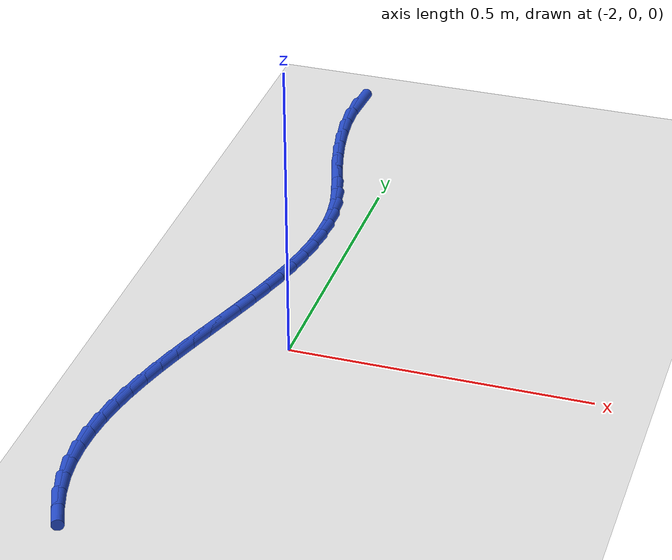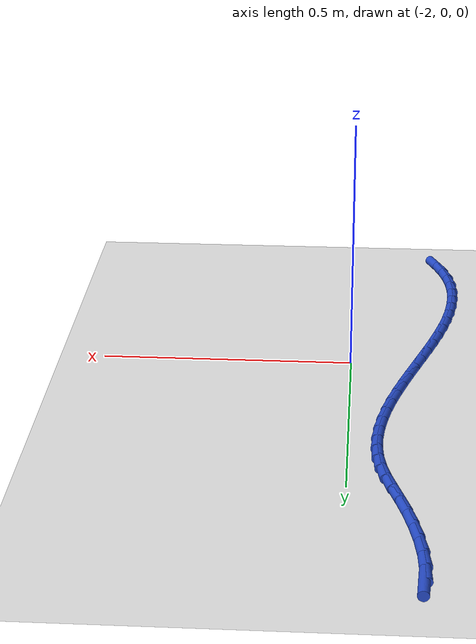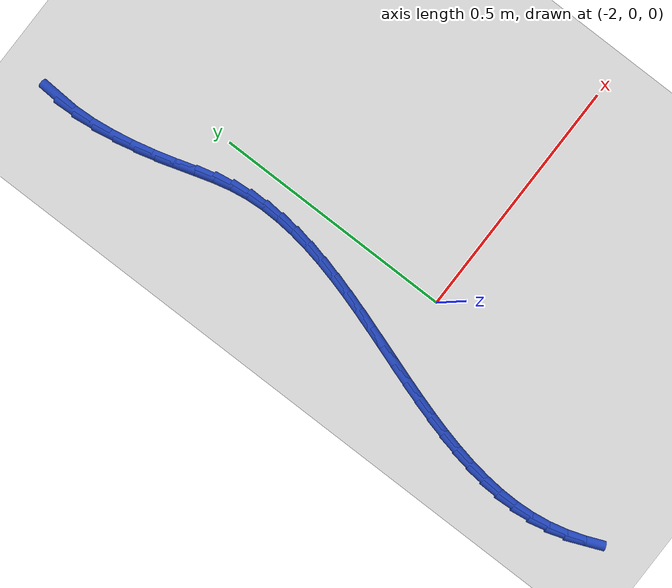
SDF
<sdf version="1.6">
 <world name="default">
  <model name="ground_plane">
   <static>1</static>
   <link name="link">
    <collision name="collision">
     <geometry><plane><normal>0 0 1</normal><size>100 100</size></plane></geometry>
     <surface><friction><ode><mu>100</mu><mu2>50</mu2></ode></friction></surface>
    </collision>
    <visual name="visual">
     <cast_shadows>0</cast_shadows>
     <geometry><plane><normal>0 0 1</normal><size>100 100</size></plane></geometry>
     <material>
      <script><uri>file://media/materials/scripts/gazebo.material</uri><name>Gazebo/WhiteGlow</name></script>
     </material>
    </visual>
   </link>
  </model>
  <model name="line">
   <link name="link_91">
    <pose>-2.130423496986155 0.807959017133868 0.01 0 1.57 1.5155421655493575</pose>
    <collision name="collision">
     <geometry><cylinder><radius>0.01</radius><length>0.08</length></cylinder></geometry>
    </collision>
    <visual name="visual">
     <material>
      <script><name>Gazebo/Blue</name><uri>file://media/materials/scripts/gazebo.material</uri></script>
     </material>
     <geometry><cylinder><radius>0.01</radius><length>0.08</length></cylinder></geometry>
    </visual>
   </link>
   <link name="link_92">
    <pose>-2.1326080266100917 0.7684632401121725 0.01 0 1.57 -1.5203920685964691</pose>
    <collision name="collision">
     <geometry><cylinder><radius>0.01</radius><length>0.08</length></cylinder></geometry>
    </collision>
    <visual name="visual">
     <material>
      <script><name>Gazebo/Blue</name><uri>file://media/materials/scripts/gazebo.material</uri></script>
     </material>
     <geometry><cylinder><radius>0.01</radius><length>0.08</length></cylinder></geometry>
    </visual>
   </link>
   <link name="link_93">
    <pose>-2.1304706945708576 0.7260953572918968 0.01 0 1.57 -1.442428677396946</pose>
    <collision name="collision">
     <geometry><cylinder><radius>0.01</radius><length>0.08</length></cylinder></geometry>
    </collision>
    <visual name="visual">
     <material>
      <script><name>Gazebo/Blue</name><uri>file://media/materials/scripts/gazebo.material</uri></script>
     </material>
     <geometry><cylinder><radius>0.01</radius><length>0.08</length></cylinder></geometry>
    </visual>
   </link>
   <link name="link_94">
    <pose>-2.124796878160886 0.682138665049626 0.01 0 1.57 -1.382705040670204</pose>
    <collision name="collision">
     <geometry><cylinder><radius>0.01</radius><length>0.08</length></cylinder></geometry>
    </collision>
    <visual name="visual">
     <material>
      <script><name>Gazebo/Blue</name><uri>file://media/materials/scripts/gazebo.material</uri></script>
     </material>
     <geometry><cylinder><radius>0.01</radius><length>0.08</length></cylinder></geometry>
    </visual>
   </link>
   <link name="link_95">
    <pose>-2.11637195467261 0.6378764597619441 0.01 0 1.57 -1.3351990940043768</pose>
    <collision name="collision">
     <geometry><cylinder><radius>0.01</radius><length>0.08</length></cylinder></geometry>
    </collision>
    <visual name="visual">
     <material>
      <script><name>Gazebo/Blue</name><uri>file://media/materials/scripts/gazebo.material</uri></script>
     </material>
     <geometry><cylinder><radius>0.01</radius><length>0.08</length></cylinder></geometry>
    </visual>
   </link>
   <link name="link_96">
    <pose>-2.1059813013984616 0.5945920378054371 0.01 0 1.57 -1.2959185022911541</pose>
    <collision name="collision">
     <geometry><cylinder><radius>0.01</radius><length>0.08</length></cylinder></geometry>
    </collision>
    <visual name="visual">
     <material>
      <script><name>Gazebo/Blue</name><uri>file://media/materials/scripts/gazebo.material</uri></script>
     </material>
     <geometry><cylinder><radius>0.01</radius><length>0.08</length></cylinder></geometry>
    </visual>
   </link>
   <link name="link_97">
    <pose>-2.094410961816769 0.5535648971107137 0.01 0 1.57 -1.2701235366216421</pose>
    <collision name="collision">
     <geometry><cylinder><radius>0.01</radius><length>0.08</length></cylinder></geometry>
    </collision>
    <visual name="visual">
     <material>
      <script><name>Gazebo/Blue</name><uri>file://media/materials/scripts/gazebo.material</uri></script>
     </material>
     <geometry><cylinder><radius>0.01</radius><length>0.08</length></cylinder></geometry>
    </visual>
   </link>
   <link name="link_98">
    <pose>-2.082569528392191 0.5153757881461047 0.01 0 1.57 -1.2779452075612623</pose>
    <collision name="collision">
     <geometry><cylinder><radius>0.01</radius><length>0.08</length></cylinder></geometry>
    </collision>
    <visual name="visual">
     <material>
      <script><name>Gazebo/Blue</name><uri>file://media/materials/scripts/gazebo.material</uri></script>
     </material>
     <geometry><cylinder><radius>0.01</radius><length>0.08</length></cylinder></geometry>
    </visual>
   </link>
   <link name="link_99">
    <pose>-2.0716303660449467 0.4790957868657326 0.01 0 1.57 -1.3270153987502893</pose>
    <collision name="collision">
     <geometry><cylinder><radius>0.01</radius><length>0.08</length></cylinder></geometry>
    </collision>
    <visual name="visual">
     <material>
      <script><name>Gazebo/Blue</name><uri>file://media/materials/scripts/gazebo.material</uri></script>
     </material>
     <geometry><cylinder><radius>0.01</radius><length>0.08</length></cylinder></geometry>
    </visual>
   </link>
   <link name="link_100">
    <pose>-2.062801361708371 0.4435991322707718 0.01 0 1.57 -1.41325969163874</pose>
    <collision name="collision">
     <geometry><cylinder><radius>0.01</radius><length>0.08</length></cylinder></geometry>
    </collision>
    <visual name="visual">
     <material>
      <script><name>Gazebo/Blue</name><uri>file://media/materials/scripts/gazebo.material</uri></script>
     </material>
     <geometry><cylinder><radius>0.01</radius><length>0.08</length></cylinder></geometry>
    </visual>
   </link>
   <link name="link_101">
    <pose>-2.0571280799403913 0.4078850829469337 0.01 0 1.57 -1.5030542724279867</pose>
    <collision name="collision">
     <geometry><cylinder><radius>0.01</radius><length>0.08</length></cylinder></geometry>
    </collision>
    <visual name="visual">
     <material>
      <script><name>Gazebo/Blue</name><uri>file://media/materials/scripts/gazebo.material</uri></script>
     </material>
     <geometry><cylinder><radius>0.01</radius><length>0.08</length></cylinder></geometry>
    </visual>
   </link>
   <link name="link_102">
    <pose>-2.0546737168788285 0.37170951092546417 0.01 0 1.57 1.558225322866918</pose>
    <collision name="collision">
     <geometry><cylinder><radius>0.01</radius><length>0.08</length></cylinder></geometry>
    </collision>
    <visual name="visual">
     <material>
      <script><name>Gazebo/Blue</name><uri>file://media/materials/scripts/gazebo.material</uri></script>
     </material>
     <geometry><cylinder><radius>0.01</radius><length>0.08</length></cylinder></geometry>
    </visual>
   </link>
   <link name="link_103">
    <pose>-2.0551338154552417 0.33511145222522937 0.01 0 1.57 1.4879851521279988</pose>
    <collision name="collision">
     <geometry><cylinder><radius>0.01</radius><length>0.08</length></cylinder></geometry>
    </collision>
    <visual name="visual">
     <material>
      <script><name>Gazebo/Blue</name><uri>file://media/materials/scripts/gazebo.material</uri></script>
     </material>
     <geometry><cylinder><radius>0.01</radius><length>0.08</length></cylinder></geometry>
    </visual>
   </link>
   <link name="link_104">
    <pose>-2.0582032764079456 0.2981304374779441 0.01 0 1.57 1.4278055768079714</pose>
    <collision name="collision">
     <geometry><cylinder><radius>0.01</radius><length>0.08</length></cylinder></geometry>
    </collision>
    <visual name="visual">
     <material>
      <script><name>Gazebo/Blue</name><uri>file://media/materials/scripts/gazebo.material</uri></script>
     </material>
     <geometry><cylinder><radius>0.01</radius><length>0.08</length></cylinder></geometry>
    </visual>
   </link>
   <link name="link_105">
    <pose>-2.0635770004752585 0.2608059973153239 0.01 0 1.57 1.3773078490961805</pose>
    <collision name="collision">
     <geometry><cylinder><radius>0.01</radius><length>0.08</length></cylinder></geometry>
    </collision>
    <visual name="visual">
     <material>
      <script><name>Gazebo/Blue</name><uri>file://media/materials/scripts/gazebo.material</uri></script>
     </material>
     <geometry><cylinder><radius>0.01</radius><length>0.08</length></cylinder></geometry>
    </visual>
   </link>
   <link name="link_106">
    <pose>-2.0709498883954947 0.2231776623690827 0.01 0 1.57 1.3359325566383273</pose>
    <collision name="collision">
     <geometry><cylinder><radius>0.01</radius><length>0.08</length></cylinder></geometry>
    </collision>
    <visual name="visual">
     <material>
      <script><name>Gazebo/Blue</name><uri>file://media/materials/scripts/gazebo.material</uri></script>
     </material>
     <geometry><cylinder><radius>0.01</radius><length>0.08</length></cylinder></geometry>
    </visual>
   </link>
   <link name="link_107">
    <pose>-2.0800168409069713 0.18528496327093769 0.01 0 1.57 1.3030742181335824</pose>
    <collision name="collision">
     <geometry><cylinder><radius>0.01</radius><length>0.08</length></cylinder></geometry>
    </collision>
    <visual name="visual">
     <material>
      <script><name>Gazebo/Blue</name><uri>file://media/materials/scripts/gazebo.material</uri></script>
     </material>
     <geometry><cylinder><radius>0.01</radius><length>0.08</length></cylinder></geometry>
    </visual>
   </link>
   <link name="link_108">
    <pose>-2.0904727587480028 0.14716743065260285 0.01 0 1.57 1.27816789330948</pose>
    <collision name="collision">
     <geometry><cylinder><radius>0.01</radius><length>0.08</length></cylinder></geometry>
    </collision>
    <visual name="visual">
     <material>
      <script><name>Gazebo/Blue</name><uri>file://media/materials/scripts/gazebo.material</uri></script>
     </material>
     <geometry><cylinder><radius>0.01</radius><length>0.08</length></cylinder></geometry>
    </visual>
   </link>
   <link name="link_109">
    <pose>-2.102012542656906 0.10886459514579352 0.01 0 1.57 1.2607396186837174</pose>
    <collision name="collision">
     <geometry><cylinder><radius>0.01</radius><length>0.08</length></cylinder></geometry>
    </collision>
    <visual name="visual">
     <material>
      <script><name>Gazebo/Blue</name><uri>file://media/materials/scripts/gazebo.material</uri></script>
     </material>
     <geometry><cylinder><radius>0.01</radius><length>0.08</length></cylinder></geometry>
    </visual>
   </link>
   <link name="link_110">
    <pose>-2.1143310933719963 0.07041598738222468 0.01 0 1.57 1.250432966708732</pose>
    <collision name="collision">
     <geometry><cylinder><radius>0.01</radius><length>0.08</length></cylinder></geometry>
    </collision>
    <visual name="visual">
     <material>
      <script><name>Gazebo/Blue</name><uri>file://media/materials/scripts/gazebo.material</uri></script>
     </material>
     <geometry><cylinder><radius>0.01</radius><length>0.08</length></cylinder></geometry>
    </visual>
   </link>
   <link name="link_111">
    <pose>-2.1271233116315913 0.031861137993611593 0.01 0 1.57 1.2470213365960907</pose>
    <collision name="collision">
     <geometry><cylinder><radius>0.01</radius><length>0.08</length></cylinder></geometry>
    </collision>
    <visual name="visual">
     <material>
      <script><name>Gazebo/Blue</name><uri>file://media/materials/scripts/gazebo.material</uri></script>
     </material>
     <geometry><cylinder><radius>0.01</radius><length>0.08</length></cylinder></geometry>
    </visual>
   </link>
   <link name="link_112">
    <pose>-2.1400840981740057 -0.00676042238833157 0.01 0 1.57 1.2504123429536884</pose>
    <collision name="collision">
     <geometry><cylinder><radius>0.01</radius><length>0.08</length></cylinder></geometry>
    </collision>
    <visual name="visual">
     <material>
      <script><name>Gazebo/Blue</name><uri>file://media/materials/scripts/gazebo.material</uri></script>
     </material>
     <geometry><cylinder><radius>0.01</radius><length>0.08</length></cylinder></geometry>
    </visual>
   </link>
   <link name="link_113">
    <pose>-2.1529083537375553 -0.04540916313188786 0.01 0 1.57 1.260647821424092</pose>
    <collision name="collision">
     <geometry><cylinder><radius>0.01</radius><length>0.08</length></cylinder></geometry>
    </collision>
    <visual name="visual">
     <material>
      <script><name>Gazebo/Blue</name><uri>file://media/materials/scripts/gazebo.material</uri></script>
     </material>
     <geometry><cylinder><radius>0.01</radius><length>0.08</length></cylinder></geometry>
    </visual>
   </link>
   <link name="link_114">
    <pose>-2.1652909790605555 -0.08404555360534303 0.01 0 1.57 1.2779006135525537</pose>
    <collision name="collision">
     <geometry><cylinder><radius>0.01</radius><length>0.08</length></cylinder></geometry>
    </collision>
    <visual name="visual">
     <material>
      <script><name>Gazebo/Blue</name><uri>file://media/materials/scripts/gazebo.material</uri></script>
     </material>
     <geometry><cylinder><radius>0.01</radius><length>0.08</length></cylinder></geometry>
    </visual>
   </link>
   <link name="link_115">
    <pose>-2.1769268748813237 -0.12263006317698201 0.01 0 1.57 1.3024671875279168</pose>
    <collision name="collision">
     <geometry><cylinder><radius>0.01</radius><length>0.08</length></cylinder></geometry>
    </collision>
    <visual name="visual">
     <material>
      <script><name>Gazebo/Blue</name><uri>file://media/materials/scripts/gazebo.material</uri></script>
     </material>
     <geometry><cylinder><radius>0.01</radius><length>0.08</length></cylinder></geometry>
    </visual>
   </link>
   <link name="link_116">
    <pose>-2.187510941938175 -0.16112316121508954 0.01 0 1.57 1.3347529902338806</pose>
    <collision name="collision">
     <geometry><cylinder><radius>0.01</radius><length>0.08</length></cylinder></geometry>
    </collision>
    <visual name="visual">
     <material>
      <script><name>Gazebo/Blue</name><uri>file://media/materials/scripts/gazebo.material</uri></script>
     </material>
     <geometry><cylinder><radius>0.01</radius><length>0.08</length></cylinder></geometry>
    </visual>
   </link>
   <link name="link_117">
    <pose>-2.1967380809694257 -0.19948531708795061 0.01 0 1.57 1.375245001461138</pose>
    <collision name="collision">
     <geometry><cylinder><radius>0.01</radius><length>0.08</length></cylinder></geometry>
    </collision>
    <visual name="visual">
     <material>
      <script><name>Gazebo/Blue</name><uri>file://media/materials/scripts/gazebo.material</uri></script>
     </material>
     <geometry><cylinder><radius>0.01</radius><length>0.08</length></cylinder></geometry>
    </visual>
   </link>
   <link name="link_118">
    <pose>-2.2043031927133914 -0.23767700016385002 0.01 0 1.57 1.4244633862346643</pose>
    <collision name="collision">
     <geometry><cylinder><radius>0.01</radius><length>0.08</length></cylinder></geometry>
    </collision>
    <visual name="visual">
     <material>
      <script><name>Gazebo/Blue</name><uri>file://media/materials/scripts/gazebo.material</uri></script>
     </material>
     <geometry><cylinder><radius>0.01</radius><length>0.08</length></cylinder></geometry>
    </visual>
   </link>
   <link name="link_119">
    <pose>-2.2099011779083884 -0.2756586798110735 0.01 0 1.57 1.4828822477756347</pose>
    <collision name="collision">
     <geometry><cylinder><radius>0.01</radius><length>0.08</length></cylinder></geometry>
    </collision>
    <visual name="visual">
     <material>
      <script><name>Gazebo/Blue</name><uri>file://media/materials/scripts/gazebo.material</uri></script>
     </material>
     <geometry><cylinder><radius>0.01</radius><length>0.08</length></cylinder></geometry>
    </visual>
   </link>
   <link name="link_120">
    <pose>-2.213226937292732 -0.3133908253979042 0.01 0 1.57 1.5508104004068362</pose>
    <collision name="collision">
     <geometry><cylinder><radius>0.01</radius><length>0.08</length></cylinder></geometry>
    </collision>
    <visual name="visual">
     <material>
      <script><name>Gazebo/Blue</name><uri>file://media/materials/scripts/gazebo.material</uri></script>
     </material>
     <geometry><cylinder><radius>0.01</radius><length>0.08</length></cylinder></geometry>
    </visual>
   </link>
   <link name="link_121">
    <pose>-2.2139753716047386 -0.3508339062926278 0.01 0 1.57 -1.513362065945231</pose>
    <collision name="collision">
     <geometry><cylinder><radius>0.01</radius><length>0.08</length></cylinder></geometry>
    </collision>
    <visual name="visual">
     <material>
      <script><name>Gazebo/Blue</name><uri>file://media/materials/scripts/gazebo.material</uri></script>
     </material>
     <geometry><cylinder><radius>0.01</radius><length>0.08</length></cylinder></geometry>
    </visual>
   </link>
   <link name="link_122">
    <pose>-2.2118413815827247 -0.38794839186352925 0.01 0 1.57 -1.4269787133960499</pose>
    <collision name="collision">
     <geometry><cylinder><radius>0.01</radius><length>0.08</length></cylinder></geometry>
    </collision>
    <visual name="visual">
     <material>
      <script><name>Gazebo/Blue</name><uri>file://media/materials/scripts/gazebo.material</uri></script>
     </material>
     <geometry><cylinder><radius>0.01</radius><length>0.08</length></cylinder></geometry>
    </visual>
   </link>
   <link name="link_123">
    <pose>-2.2065198679650058 -0.42469475147889346 0.01 0 1.57 -1.3348554802954145</pose>
    <collision name="collision">
     <geometry><cylinder><radius>0.01</radius><length>0.08</length></cylinder></geometry>
    </collision>
    <visual name="visual">
     <material>
      <script><name>Gazebo/Blue</name><uri>file://media/materials/scripts/gazebo.material</uri></script>
     </material>
     <geometry><cylinder><radius>0.01</radius><length>0.08</length></cylinder></geometry>
    </visual>
   </link>
   <link name="link_124">
    <pose>-2.1977836809675093 -0.4610321359119261 0.01 0 1.57 -1.249969474192837</pose>
    <collision name="collision">
     <geometry><cylinder><radius>0.01</radius><length>0.08</length></cylinder></geometry>
    </collision>
    <visual name="visual">
     <material>
      <script><name>Gazebo/Blue</name><uri>file://media/materials/scripts/gazebo.material</uri></script>
     </material>
     <geometry><cylinder><radius>0.01</radius><length>0.08</length></cylinder></geometry>
    </visual>
   </link>
   <link name="link_125">
    <pose>-2.1858605392635324 -0.4969120013709978 0.01 0 1.57 -1.1764889726750363</pose>
    <collision name="collision">
     <geometry><cylinder><radius>0.01</radius><length>0.08</length></cylinder></geometry>
    </collision>
    <visual name="visual">
     <material>
      <script><name>Gazebo/Blue</name><uri>file://media/materials/scripts/gazebo.material</uri></script>
     </material>
     <geometry><cylinder><radius>0.01</radius><length>0.08</length></cylinder></geometry>
    </visual>
   </link>
  </model>
 </world>
</sdf>
